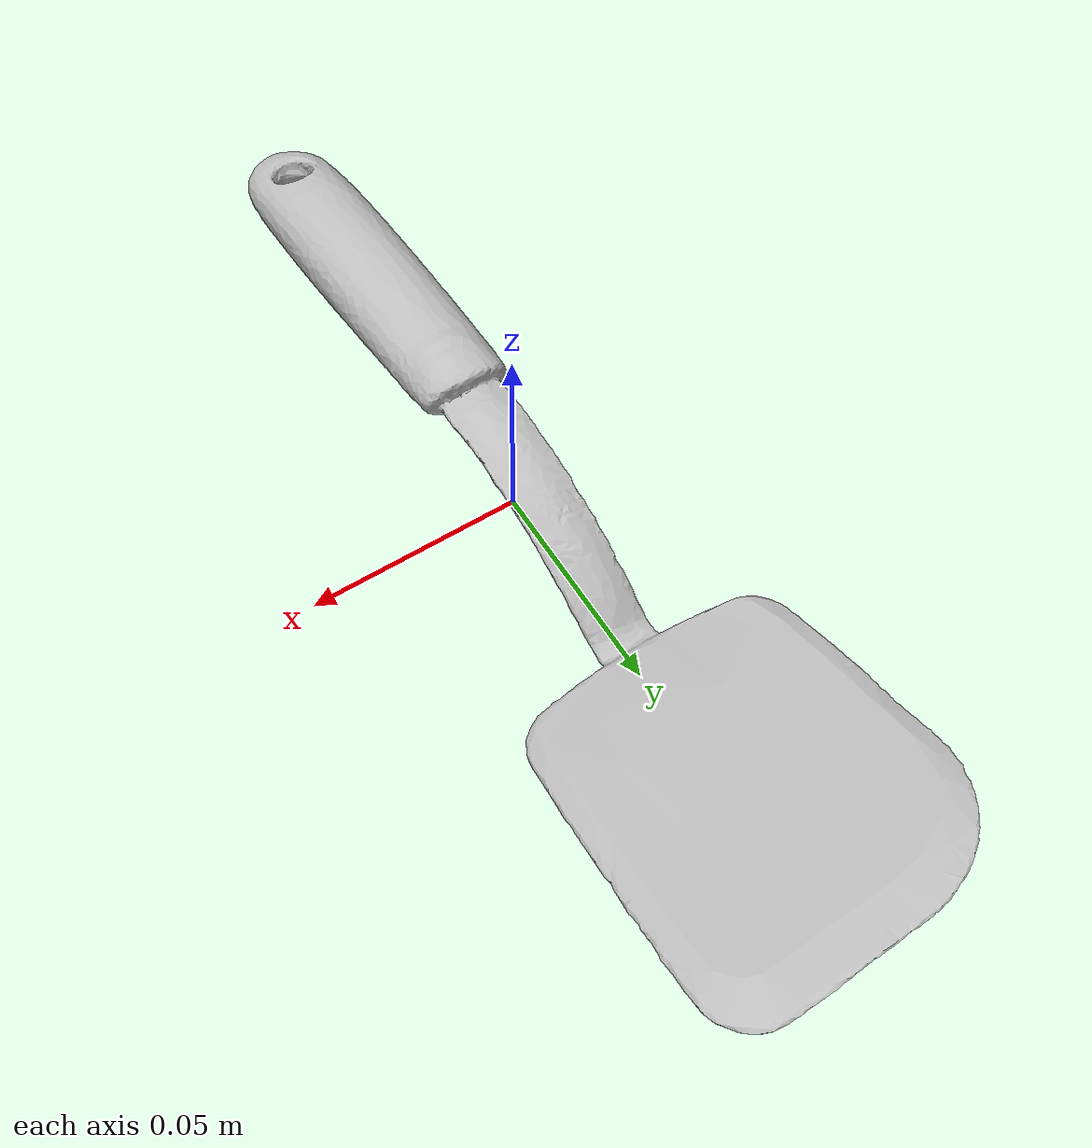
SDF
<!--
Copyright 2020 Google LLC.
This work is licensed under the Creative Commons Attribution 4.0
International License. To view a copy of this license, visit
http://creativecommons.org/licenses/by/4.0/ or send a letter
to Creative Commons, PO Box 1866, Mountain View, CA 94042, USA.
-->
<?xml version="1.0" ?>
<sdf version="1.6">
  <model name="OXO_Cookie_Spatula">
    <link name="link_0">
      <visual name="visual">
        <geometry>
          <mesh>
            <uri>meshes/model.obj</uri>
          </mesh>
        </geometry>
      </visual>
      <collision name="collision_0">
        <geometry>
          <mesh>
            <uri>meshes/model.obj</uri>
          </mesh>
        </geometry>
      </collision>
    </link>
  </model>
</sdf>
